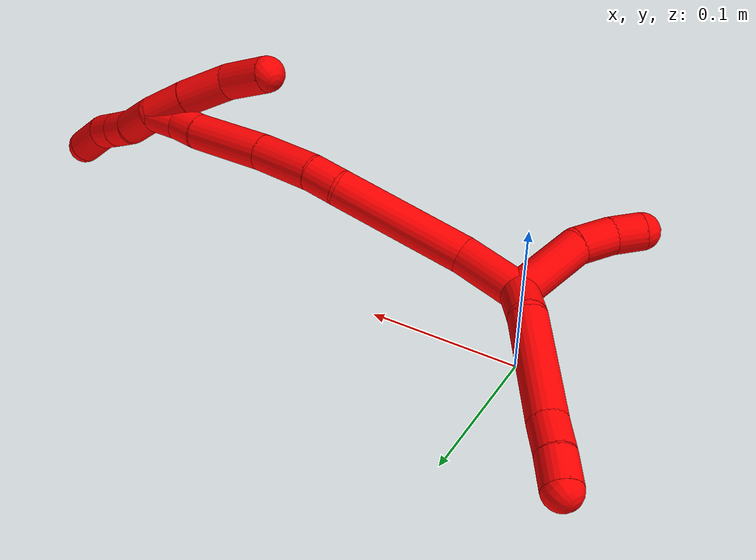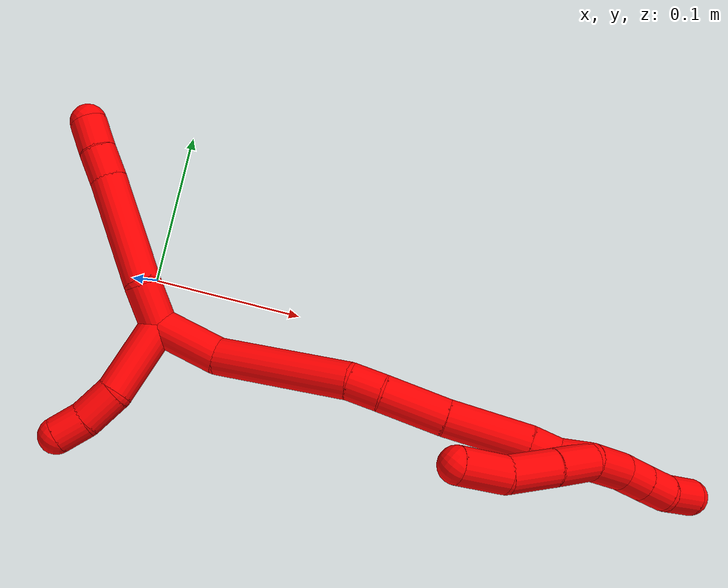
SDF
<sdf version="1.7">
 <world name="default">
  <model name="2">
   <static>0</static>
   <link name="2">
    <collision name="collision-cylinder-e_1_2_8">
     <pose>-0.003464 0.008222 -0.012033 -2.54219 -0.233328 0.725009</pose>
     <geometry><cylinder><radius>0.0125</radius><length>0.02996</length></cylinder></geometry>
     <surface>
      <friction><ode><mu>1.16</mu><mu2>1.16</mu2><slip1>0</slip1><slip2>0</slip2></ode></friction>
      <contact><ode><kp>1e+06</kp><kd>1</kd><max_vel>0</max_vel><min_depth>0.001</min_depth></ode></contact>
     </surface>
    </collision>
    <visual name="visual-cylinder-e_1_2_8">
     <pose>-0.003464 0.008222 -0.012033 -2.54219 -0.233328 0.725009</pose>
     <geometry><cylinder><radius>0.0125</radius><length>0.02996</length></cylinder></geometry>
     <material><ambient>1 0 0 1</ambient></material>
    </visual>
    <collision name="collision-cylinder-e_2_8_9">
     <pose>-0.003653 0.035432 -0.056765 -2.61549 0.086389 -0.318287</pose>
     <geometry><cylinder><radius>0.0125</radius><length>0.075907</length></cylinder></geometry>
     <surface>
      <friction><ode><mu>1.16</mu><mu2>1.16</mu2><slip1>0</slip1><slip2>0</slip2></ode></friction>
      <contact><ode><kp>1e+06</kp><kd>1</kd><max_vel>0</max_vel><min_depth>0.001</min_depth></ode></contact>
     </surface>
    </collision>
    <visual name="visual-cylinder-e_2_8_9">
     <pose>-0.003653 0.035432 -0.056765 -2.61549 0.086389 -0.318287</pose>
     <geometry><cylinder><radius>0.0125</radius><length>0.075907</length></cylinder></geometry>
     <material><ambient>1 0 0 1</ambient></material>
    </visual>
    <collision name="collision-cylinder-e_3_9_10">
     <pose>-6.1e-05 0.059768 -0.099066 -2.63338 0.028816 -0.110845</pose>
     <geometry><cylinder><radius>0.0125</radius><length>0.021992</length></cylinder></geometry>
     <surface>
      <friction><ode><mu>1.16</mu><mu2>1.16</mu2><slip1>0</slip1><slip2>0</slip2></ode></friction>
      <contact><ode><kp>1e+06</kp><kd>1</kd><max_vel>0</max_vel><min_depth>0.001</min_depth></ode></contact>
     </surface>
    </collision>
    <visual name="visual-cylinder-e_3_9_10">
     <pose>-6.1e-05 0.059768 -0.099066 -2.63338 0.028816 -0.110845</pose>
     <geometry><cylinder><radius>0.0125</radius><length>0.021992</length></cylinder></geometry>
     <material><ambient>1 0 0 1</ambient></material>
    </visual>
    <collision name="collision-cylinder-e_4_10_6">
     <pose>0.001518 0.07056 -0.118226 -2.62384 0.114247 -0.425351</pose>
     <geometry><cylinder><radius>0.0125</radius><length>0.022141</length></cylinder></geometry>
     <surface>
      <friction><ode><mu>1.16</mu><mu2>1.16</mu2><slip1>0</slip1><slip2>0</slip2></ode></friction>
      <contact><ode><kp>1e+06</kp><kd>1</kd><max_vel>0</max_vel><min_depth>0.001</min_depth></ode></contact>
     </surface>
    </collision>
    <visual name="visual-cylinder-e_4_10_6">
     <pose>0.001518 0.07056 -0.118226 -2.62384 0.114247 -0.425351</pose>
     <geometry><cylinder><radius>0.0125</radius><length>0.022141</length></cylinder></geometry>
     <material><ambient>1 0 0 1</ambient></material>
    </visual>
    <collision name="collision-cylinder-e_1_2_11">
     <pose>-0.008066 -0.024706 0.003994 1.41053 -0.311789 -0.266027</pose>
     <geometry><cylinder><radius>0.0125</radius><length>0.052589</length></cylinder></geometry>
     <surface>
      <friction><ode><mu>1.16</mu><mu2>1.16</mu2><slip1>0</slip1><slip2>0</slip2></ode></friction>
      <contact><ode><kp>1e+06</kp><kd>1</kd><max_vel>0</max_vel><min_depth>0.001</min_depth></ode></contact>
     </surface>
    </collision>
    <visual name="visual-cylinder-e_1_2_11">
     <pose>-0.008066 -0.024706 0.003994 1.41053 -0.311789 -0.266027</pose>
     <geometry><cylinder><radius>0.0125</radius><length>0.052589</length></cylinder></geometry>
     <material><ambient>1 0 0 1</ambient></material>
    </visual>
    <collision name="collision-cylinder-e_2_11_12">
     <pose>-0.018524 -0.062089 0.006071 1.72086 -0.184392 -0.214156</pose>
     <geometry><cylinder><radius>0.0125</radius><length>0.026084</length></cylinder></geometry>
     <surface>
      <friction><ode><mu>1.16</mu><mu2>1.16</mu2><slip1>0</slip1><slip2>0</slip2></ode></friction>
      <contact><ode><kp>1e+06</kp><kd>1</kd><max_vel>0</max_vel><min_depth>0.001</min_depth></ode></contact>
     </surface>
    </collision>
    <visual name="visual-cylinder-e_2_11_12">
     <pose>-0.018524 -0.062089 0.006071 1.72086 -0.184392 -0.214156</pose>
     <geometry><cylinder><radius>0.0125</radius><length>0.026084</length></cylinder></geometry>
     <material><ambient>1 0 0 1</ambient></material>
    </visual>
    <collision name="collision-cylinder-e_3_12_5">
     <pose>-0.023361 -0.084442 0.0004 1.94085 -0.231503 -0.336426</pose>
     <geometry><cylinder><radius>0.0125</radius><length>0.021327</length></cylinder></geometry>
     <surface>
      <friction><ode><mu>1.16</mu><mu2>1.16</mu2><slip1>0</slip1><slip2>0</slip2></ode></friction>
      <contact><ode><kp>1e+06</kp><kd>1</kd><max_vel>0</max_vel><min_depth>0.001</min_depth></ode></contact>
     </surface>
    </collision>
    <visual name="visual-cylinder-e_3_12_5">
     <pose>-0.023361 -0.084442 0.0004 1.94085 -0.231503 -0.336426</pose>
     <geometry><cylinder><radius>0.0125</radius><length>0.021327</length></cylinder></geometry>
     <material><ambient>1 0 0 1</ambient></material>
    </visual>
    <collision name="collision-cylinder-e_1_2_13">
     <pose>0.002778 0.004307 0.021874 -0.194431 0.123977 -0.012106</pose>
     <geometry><cylinder><radius>0.0125</radius><length>0.044933</length></cylinder></geometry>
     <surface>
      <friction><ode><mu>1.16</mu><mu2>1.16</mu2><slip1>0</slip1><slip2>0</slip2></ode></friction>
      <contact><ode><kp>1e+06</kp><kd>1</kd><max_vel>0</max_vel><min_depth>0.001</min_depth></ode></contact>
     </surface>
    </collision>
    <visual name="visual-cylinder-e_1_2_13">
     <pose>0.002778 0.004307 0.021874 -0.194431 0.123977 -0.012106</pose>
     <geometry><cylinder><radius>0.0125</radius><length>0.044933</length></cylinder></geometry>
     <material><ambient>1 0 0 1</ambient></material>
    </visual>
    <collision name="collision-cylinder-e_2_13_14">
     <pose>0.005301 0.030107 0.084369 -0.486651 -0.005558 0.00138</pose>
     <geometry><cylinder><radius>0.0125</radius><length>0.091914</length></cylinder></geometry>
     <surface>
      <friction><ode><mu>1.16</mu><mu2>1.16</mu2><slip1>0</slip1><slip2>0</slip2></ode></friction>
      <contact><ode><kp>1e+06</kp><kd>1</kd><max_vel>0</max_vel><min_depth>0.001</min_depth></ode></contact>
     </surface>
    </collision>
    <visual name="visual-cylinder-e_2_13_14">
     <pose>0.005301 0.030107 0.084369 -0.486651 -0.005558 0.00138</pose>
     <geometry><cylinder><radius>0.0125</radius><length>0.091914</length></cylinder></geometry>
     <material><ambient>1 0 0 1</ambient></material>
    </visual>
    <collision name="collision-cylinder-e_3_14_15">
     <pose>0.006473 0.054978 0.135555 -0.309492 0.127968 -0.019989</pose>
     <geometry><cylinder><radius>0.0125</radius><length>0.022366</length></cylinder></geometry>
     <surface>
      <friction><ode><mu>1.16</mu><mu2>1.16</mu2><slip1>0</slip1><slip2>0</slip2></ode></friction>
      <contact><ode><kp>1e+06</kp><kd>1</kd><max_vel>0</max_vel><min_depth>0.001</min_depth></ode></contact>
     </surface>
    </collision>
    <visual name="visual-cylinder-e_3_14_15">
     <pose>0.006473 0.054978 0.135555 -0.309492 0.127968 -0.019989</pose>
     <geometry><cylinder><radius>0.0125</radius><length>0.022366</length></cylinder></geometry>
     <material><ambient>1 0 0 1</ambient></material>
    </visual>
    <collision name="collision-cylinder-e_4_15_16">
     <pose>0.013735 0.064149 0.166214 -0.280694 0.272092 -0.038674</pose>
     <geometry><cylinder><radius>0.0125</radius><length>0.043423</length></cylinder></geometry>
     <surface>
      <friction><ode><mu>1.16</mu><mu2>1.16</mu2><slip1>0</slip1><slip2>0</slip2></ode></friction>
      <contact><ode><kp>1e+06</kp><kd>1</kd><max_vel>0</max_vel><min_depth>0.001</min_depth></ode></contact>
     </surface>
    </collision>
    <visual name="visual-cylinder-e_4_15_16">
     <pose>0.013735 0.064149 0.166214 -0.280694 0.272092 -0.038674</pose>
     <geometry><cylinder><radius>0.0125</radius><length>0.043423</length></cylinder></geometry>
     <material><ambient>1 0 0 1</ambient></material>
    </visual>
    <collision name="collision-cylinder-e_5_16_17">
     <pose>0.028047 0.078935 0.211486 -0.343038 0.307044 -0.053595</pose>
     <geometry><cylinder><radius>0.0125</radius><length>0.056095</length></cylinder></geometry>
     <surface>
      <friction><ode><mu>1.16</mu><mu2>1.16</mu2><slip1>0</slip1><slip2>0</slip2></ode></friction>
      <contact><ode><kp>1e+06</kp><kd>1</kd><max_vel>0</max_vel><min_depth>0.001</min_depth></ode></contact>
     </surface>
    </collision>
    <visual name="visual-cylinder-e_5_16_17">
     <pose>0.028047 0.078935 0.211486 -0.343038 0.307044 -0.053595</pose>
     <geometry><cylinder><radius>0.0125</radius><length>0.056095</length></cylinder></geometry>
     <material><ambient>1 0 0 1</ambient></material>
    </visual>
    <collision name="collision-cylinder-e_6_17_18">
     <pose>0.039087 0.090052 0.246121 -0.220925 0.258537 -0.028834</pose>
     <geometry><cylinder><radius>0.0125</radius><length>0.02005</length></cylinder></geometry>
     <surface>
      <friction><ode><mu>1.16</mu><mu2>1.16</mu2><slip1>0</slip1><slip2>0</slip2></ode></friction>
      <contact><ode><kp>1e+06</kp><kd>1</kd><max_vel>0</max_vel><min_depth>0.001</min_depth></ode></contact>
     </surface>
    </collision>
    <visual name="visual-cylinder-e_6_17_18">
     <pose>0.039087 0.090052 0.246121 -0.220925 0.258537 -0.028834</pose>
     <geometry><cylinder><radius>0.0125</radius><length>0.02005</length></cylinder></geometry>
     <material><ambient>1 0 0 1</ambient></material>
    </visual>
    <collision name="collision-cylinder-e_7_18_1">
     <pose>0.043357 0.097417 0.264641 -0.524323 0.161618 -0.043456</pose>
     <geometry><cylinder><radius>0.0125</radius><length>0.021218</length></cylinder></geometry>
     <surface>
      <friction><ode><mu>1.16</mu><mu2>1.16</mu2><slip1>0</slip1><slip2>0</slip2></ode></friction>
      <contact><ode><kp>1e+06</kp><kd>1</kd><max_vel>0</max_vel><min_depth>0.001</min_depth></ode></contact>
     </surface>
    </collision>
    <visual name="visual-cylinder-e_7_18_1">
     <pose>0.043357 0.097417 0.264641 -0.524323 0.161618 -0.043456</pose>
     <geometry><cylinder><radius>0.0125</radius><length>0.021218</length></cylinder></geometry>
     <material><ambient>1 0 0 1</ambient></material>
    </visual>
    <collision name="collision-cylinder-e_1_1_19">
     <pose>0.034406 0.095288 0.266537 2.34227 -0.803334 -1.57638</pose>
     <geometry><cylinder><radius>0.0125</radius><length>0.029619</length></cylinder></geometry>
     <surface>
      <friction><ode><mu>1.16</mu><mu2>1.16</mu2><slip1>0</slip1><slip2>0</slip2></ode></friction>
      <contact><ode><kp>1e+06</kp><kd>1</kd><max_vel>0</max_vel><min_depth>0.001</min_depth></ode></contact>
     </surface>
    </collision>
    <visual name="visual-cylinder-e_1_1_19">
     <pose>0.034406 0.095288 0.266537 2.34227 -0.803334 -1.57638</pose>
     <geometry><cylinder><radius>0.0125</radius><length>0.029619</length></cylinder></geometry>
     <material><ambient>1 0 0 1</ambient></material>
    </visual>
    <collision name="collision-cylinder-e_2_19_20">
     <pose>0.011781 0.078471 0.249994 2.35238 -0.732447 -1.48853</pose>
     <geometry><cylinder><radius>0.0125</radius><length>0.035795</length></cylinder></geometry>
     <surface>
      <friction><ode><mu>1.16</mu><mu2>1.16</mu2><slip1>0</slip1><slip2>0</slip2></ode></friction>
      <contact><ode><kp>1e+06</kp><kd>1</kd><max_vel>0</max_vel><min_depth>0.001</min_depth></ode></contact>
     </surface>
    </collision>
    <visual name="visual-cylinder-e_2_19_20">
     <pose>0.011781 0.078471 0.249994 2.35238 -0.732447 -1.48853</pose>
     <geometry><cylinder><radius>0.0125</radius><length>0.035795</length></cylinder></geometry>
     <material><ambient>1 0 0 1</ambient></material>
    </visual>
    <collision name="collision-cylinder-e_3_20_4">
     <pose>-0.011106 0.063832 0.228256 2.74391 -0.683341 -2.11054</pose>
     <geometry><cylinder><radius>0.0125</radius><length>0.034586</length></cylinder></geometry>
     <surface>
      <friction><ode><mu>1.16</mu><mu2>1.16</mu2><slip1>0</slip1><slip2>0</slip2></ode></friction>
      <contact><ode><kp>1e+06</kp><kd>1</kd><max_vel>0</max_vel><min_depth>0.001</min_depth></ode></contact>
     </surface>
    </collision>
    <visual name="visual-cylinder-e_3_20_4">
     <pose>-0.011106 0.063832 0.228256 2.74391 -0.683341 -2.11054</pose>
     <geometry><cylinder><radius>0.0125</radius><length>0.034586</length></cylinder></geometry>
     <material><ambient>1 0 0 1</ambient></material>
    </visual>
    <collision name="collision-cylinder-e_1_1_21">
     <pose>0.057346 0.104742 0.282457 -0.233641 0.938628 -0.118882</pose>
     <geometry><cylinder><radius>0.0125</radius><length>0.030448</length></cylinder></geometry>
     <surface>
      <friction><ode><mu>1.16</mu><mu2>1.16</mu2><slip1>0</slip1><slip2>0</slip2></ode></friction>
      <contact><ode><kp>1e+06</kp><kd>1</kd><max_vel>0</max_vel><min_depth>0.001</min_depth></ode></contact>
     </surface>
    </collision>
    <visual name="visual-cylinder-e_1_1_21">
     <pose>0.057346 0.104742 0.282457 -0.233641 0.938628 -0.118882</pose>
     <geometry><cylinder><radius>0.0125</radius><length>0.030448</length></cylinder></geometry>
     <material><ambient>1 0 0 1</ambient></material>
    </visual>
    <collision name="collision-cylinder-e_2_21_22">
     <pose>0.076585 0.10772 0.298877 -0.116168 0.73338 -0.044658</pose>
     <geometry><cylinder><radius>0.0125</radius><length>0.020787</length></cylinder></geometry>
     <surface>
      <friction><ode><mu>1.16</mu><mu2>1.16</mu2><slip1>0</slip1><slip2>0</slip2></ode></friction>
      <contact><ode><kp>1e+06</kp><kd>1</kd><max_vel>0</max_vel><min_depth>0.001</min_depth></ode></contact>
     </surface>
    </collision>
    <visual name="visual-cylinder-e_2_21_22">
     <pose>0.076585 0.10772 0.298877 -0.116168 0.73338 -0.044658</pose>
     <geometry><cylinder><radius>0.0125</radius><length>0.020787</length></cylinder></geometry>
     <material><ambient>1 0 0 1</ambient></material>
    </visual>
    <collision name="collision-cylinder-e_3_22_23">
     <pose>0.090237 0.109617 0.314206 -0.130165 0.714019 -0.04861</pose>
     <geometry><cylinder><radius>0.0125</radius><length>0.020443</length></cylinder></geometry>
     <surface>
      <friction><ode><mu>1.16</mu><mu2>1.16</mu2><slip1>0</slip1><slip2>0</slip2></ode></friction>
      <contact><ode><kp>1e+06</kp><kd>1</kd><max_vel>0</max_vel><min_depth>0.001</min_depth></ode></contact>
     </surface>
    </collision>
    <visual name="visual-cylinder-e_3_22_23">
     <pose>0.090237 0.109617 0.314206 -0.130165 0.714019 -0.04861</pose>
     <geometry><cylinder><radius>0.0125</radius><length>0.020443</length></cylinder></geometry>
     <material><ambient>1 0 0 1</ambient></material>
    </visual>
    <collision name="collision-cylinder-e_4_23_3">
     <pose>0.108818 0.113401 0.329042 -0.369666 0.996243 -0.202673</pose>
     <geometry><cylinder><radius>0.0125</radius><length>0.028322</length></cylinder></geometry>
     <surface>
      <friction><ode><mu>1.16</mu><mu2>1.16</mu2><slip1>0</slip1><slip2>0</slip2></ode></friction>
      <contact><ode><kp>1e+06</kp><kd>1</kd><max_vel>0</max_vel><min_depth>0.001</min_depth></ode></contact>
     </surface>
    </collision>
    <visual name="visual-cylinder-e_4_23_3">
     <pose>0.108818 0.113401 0.329042 -0.369666 0.996243 -0.202673</pose>
     <geometry><cylinder><radius>0.0125</radius><length>0.028322</length></cylinder></geometry>
     <material><ambient>1 0 0 1</ambient></material>
    </visual>
    <collision name="collision-sphere-3">
     <pose>0.120705 0.116181 0.336218 0 -0 0</pose>
     <geometry><sphere><radius>0.0125</radius></sphere></geometry>
     <surface>
      <friction><ode><mu>1.16</mu><mu2>1.16</mu2><slip1>0</slip1><slip2>0</slip2></ode></friction>
      <contact><ode><kp>1e+06</kp><kd>1</kd><max_vel>0</max_vel><min_depth>0.001</min_depth></ode></contact>
     </surface>
    </collision>
    <visual name="visual-sphere-3">
     <pose>0.120705 0.116181 0.336218 0 -0 0</pose>
     <geometry><sphere><radius>0.0125</radius></sphere></geometry>
     <material><ambient>1 0 0 1</ambient></material>
    </visual>
    <collision name="collision-sphere-23">
     <pose>0.09693 0.11062 0.321866 0 -0 0</pose>
     <geometry><sphere><radius>0.0125</radius></sphere></geometry>
     <surface>
      <friction><ode><mu>1.16</mu><mu2>1.16</mu2><slip1>0</slip1><slip2>0</slip2></ode></friction>
      <contact><ode><kp>1e+06</kp><kd>1</kd><max_vel>0</max_vel><min_depth>0.001</min_depth></ode></contact>
     </surface>
    </collision>
    <visual name="visual-sphere-23">
     <pose>0.09693 0.11062 0.321866 0 -0 0</pose>
     <geometry><sphere><radius>0.0125</radius></sphere></geometry>
     <material><ambient>1 0 0 1</ambient></material>
    </visual>
    <collision name="collision-sphere-22">
     <pose>0.083543 0.108615 0.306547 0 -0 0</pose>
     <geometry><sphere><radius>0.0125</radius></sphere></geometry>
     <surface>
      <friction><ode><mu>1.16</mu><mu2>1.16</mu2><slip1>0</slip1><slip2>0</slip2></ode></friction>
      <contact><ode><kp>1e+06</kp><kd>1</kd><max_vel>0</max_vel><min_depth>0.001</min_depth></ode></contact>
     </surface>
    </collision>
    <visual name="visual-sphere-22">
     <pose>0.083543 0.108615 0.306547 0 -0 0</pose>
     <geometry><sphere><radius>0.0125</radius></sphere></geometry>
     <material><ambient>1 0 0 1</ambient></material>
    </visual>
    <collision name="collision-sphere-21">
     <pose>0.069628 0.106825 0.291208 0 -0 0</pose>
     <geometry><sphere><radius>0.0125</radius></sphere></geometry>
     <surface>
      <friction><ode><mu>1.16</mu><mu2>1.16</mu2><slip1>0</slip1><slip2>0</slip2></ode></friction>
      <contact><ode><kp>1e+06</kp><kd>1</kd><max_vel>0</max_vel><min_depth>0.001</min_depth></ode></contact>
     </surface>
    </collision>
    <visual name="visual-sphere-21">
     <pose>0.069628 0.106825 0.291208 0 -0 0</pose>
     <geometry><sphere><radius>0.0125</radius></sphere></geometry>
     <material><ambient>1 0 0 1</ambient></material>
    </visual>
    <collision name="collision-sphere-4">
     <pose>-0.022025 0.058638 0.215893 0 -0 0</pose>
     <geometry><sphere><radius>0.0125</radius></sphere></geometry>
     <surface>
      <friction><ode><mu>1.16</mu><mu2>1.16</mu2><slip1>0</slip1><slip2>0</slip2></ode></friction>
      <contact><ode><kp>1e+06</kp><kd>1</kd><max_vel>0</max_vel><min_depth>0.001</min_depth></ode></contact>
     </surface>
    </collision>
    <visual name="visual-sphere-4">
     <pose>-0.022025 0.058638 0.215893 0 -0 0</pose>
     <geometry><sphere><radius>0.0125</radius></sphere></geometry>
     <material><ambient>1 0 0 1</ambient></material>
    </visual>
    <collision name="collision-sphere-20">
     <pose>-0.000187 0.069026 0.24062 0 -0 0</pose>
     <geometry><sphere><radius>0.0125</radius></sphere></geometry>
     <surface>
      <friction><ode><mu>1.16</mu><mu2>1.16</mu2><slip1>0</slip1><slip2>0</slip2></ode></friction>
      <contact><ode><kp>1e+06</kp><kd>1</kd><max_vel>0</max_vel><min_depth>0.001</min_depth></ode></contact>
     </surface>
    </collision>
    <visual name="visual-sphere-20">
     <pose>-0.000187 0.069026 0.24062 0 -0 0</pose>
     <geometry><sphere><radius>0.0125</radius></sphere></geometry>
     <material><ambient>1 0 0 1</ambient></material>
    </visual>
    <collision name="collision-sphere-11">
     <pose>-0.016132 -0.049412 0.007988 0 -0 0</pose>
     <geometry><sphere><radius>0.0125</radius></sphere></geometry>
     <surface>
      <friction><ode><mu>1.16</mu><mu2>1.16</mu2><slip1>0</slip1><slip2>0</slip2></ode></friction>
      <contact><ode><kp>1e+06</kp><kd>1</kd><max_vel>0</max_vel><min_depth>0.001</min_depth></ode></contact>
     </surface>
    </collision>
    <visual name="visual-sphere-11">
     <pose>-0.016132 -0.049412 0.007988 0 -0 0</pose>
     <geometry><sphere><radius>0.0125</radius></sphere></geometry>
     <material><ambient>1 0 0 1</ambient></material>
    </visual>
    <collision name="collision-sphere-6">
     <pose>0.00278 0.076004 -0.127782 0 -0 0</pose>
     <geometry><sphere><radius>0.0125</radius></sphere></geometry>
     <surface>
      <friction><ode><mu>1.16</mu><mu2>1.16</mu2><slip1>0</slip1><slip2>0</slip2></ode></friction>
      <contact><ode><kp>1e+06</kp><kd>1</kd><max_vel>0</max_vel><min_depth>0.001</min_depth></ode></contact>
     </surface>
    </collision>
    <visual name="visual-sphere-6">
     <pose>0.00278 0.076004 -0.127782 0 -0 0</pose>
     <geometry><sphere><radius>0.0125</radius></sphere></geometry>
     <material><ambient>1 0 0 1</ambient></material>
    </visual>
    <collision name="collision-sphere-10">
     <pose>0.000256 0.065117 -0.108669 0 -0 0</pose>
     <geometry><sphere><radius>0.0125</radius></sphere></geometry>
     <surface>
      <friction><ode><mu>1.16</mu><mu2>1.16</mu2><slip1>0</slip1><slip2>0</slip2></ode></friction>
      <contact><ode><kp>1e+06</kp><kd>1</kd><max_vel>0</max_vel><min_depth>0.001</min_depth></ode></contact>
     </surface>
    </collision>
    <visual name="visual-sphere-10">
     <pose>0.000256 0.065117 -0.108669 0 -0 0</pose>
     <geometry><sphere><radius>0.0125</radius></sphere></geometry>
     <material><ambient>1 0 0 1</ambient></material>
    </visual>
    <collision name="collision-sphere-9">
     <pose>-0.000378 0.05442 -0.089464 0 -0 0</pose>
     <geometry><sphere><radius>0.0125</radius></sphere></geometry>
     <surface>
      <friction><ode><mu>1.16</mu><mu2>1.16</mu2><slip1>0</slip1><slip2>0</slip2></ode></friction>
      <contact><ode><kp>1e+06</kp><kd>1</kd><max_vel>0</max_vel><min_depth>0.001</min_depth></ode></contact>
     </surface>
    </collision>
    <visual name="visual-sphere-9">
     <pose>-0.000378 0.05442 -0.089464 0 -0 0</pose>
     <geometry><sphere><radius>0.0125</radius></sphere></geometry>
     <material><ambient>1 0 0 1</ambient></material>
    </visual>
    <collision name="collision-sphere-2">
     <geometry><sphere><radius>0.0125</radius></sphere></geometry>
     <surface>
      <friction><ode><mu>1.16</mu><mu2>1.16</mu2><slip1>0</slip1><slip2>0</slip2></ode></friction>
      <contact><ode><kp>1e+06</kp><kd>1</kd><max_vel>0</max_vel><min_depth>0.001</min_depth></ode></contact>
     </surface>
    </collision>
    <visual name="visual-sphere-2">
     <geometry><sphere><radius>0.0125</radius></sphere></geometry>
     <material><ambient>1 0 0 1</ambient></material>
    </visual>
    <collision name="collision-sphere-19">
     <pose>0.023748 0.087917 0.259368 0 -0 0</pose>
     <geometry><sphere><radius>0.0125</radius></sphere></geometry>
     <surface>
      <friction><ode><mu>1.16</mu><mu2>1.16</mu2><slip1>0</slip1><slip2>0</slip2></ode></friction>
      <contact><ode><kp>1e+06</kp><kd>1</kd><max_vel>0</max_vel><min_depth>0.001</min_depth></ode></contact>
     </surface>
    </collision>
    <visual name="visual-sphere-19">
     <pose>0.023748 0.087917 0.259368 0 -0 0</pose>
     <geometry><sphere><radius>0.0125</radius></sphere></geometry>
     <material><ambient>1 0 0 1</ambient></material>
    </visual>
    <collision name="collision-sphere-8">
     <pose>-0.006927 0.016444 -0.024067 0 -0 0</pose>
     <geometry><sphere><radius>0.0125</radius></sphere></geometry>
     <surface>
      <friction><ode><mu>1.16</mu><mu2>1.16</mu2><slip1>0</slip1><slip2>0</slip2></ode></friction>
      <contact><ode><kp>1e+06</kp><kd>1</kd><max_vel>0</max_vel><min_depth>0.001</min_depth></ode></contact>
     </surface>
    </collision>
    <visual name="visual-sphere-8">
     <pose>-0.006927 0.016444 -0.024067 0 -0 0</pose>
     <geometry><sphere><radius>0.0125</radius></sphere></geometry>
     <material><ambient>1 0 0 1</ambient></material>
    </visual>
    <collision name="collision-sphere-12">
     <pose>-0.020915 -0.074766 0.004154 0 -0 0</pose>
     <geometry><sphere><radius>0.0125</radius></sphere></geometry>
     <surface>
      <friction><ode><mu>1.16</mu><mu2>1.16</mu2><slip1>0</slip1><slip2>0</slip2></ode></friction>
      <contact><ode><kp>1e+06</kp><kd>1</kd><max_vel>0</max_vel><min_depth>0.001</min_depth></ode></contact>
     </surface>
    </collision>
    <visual name="visual-sphere-12">
     <pose>-0.020915 -0.074766 0.004154 0 -0 0</pose>
     <geometry><sphere><radius>0.0125</radius></sphere></geometry>
     <material><ambient>1 0 0 1</ambient></material>
    </visual>
    <collision name="collision-sphere-5">
     <pose>-0.025808 -0.094119 -0.003354 0 -0 0</pose>
     <geometry><sphere><radius>0.0125</radius></sphere></geometry>
     <surface>
      <friction><ode><mu>1.16</mu><mu2>1.16</mu2><slip1>0</slip1><slip2>0</slip2></ode></friction>
      <contact><ode><kp>1e+06</kp><kd>1</kd><max_vel>0</max_vel><min_depth>0.001</min_depth></ode></contact>
     </surface>
    </collision>
    <visual name="visual-sphere-5">
     <pose>-0.025808 -0.094119 -0.003354 0 -0 0</pose>
     <geometry><sphere><radius>0.0125</radius></sphere></geometry>
     <material><ambient>1 0 0 1</ambient></material>
    </visual>
    <collision name="collision-sphere-13">
     <pose>0.005556 0.008615 0.043748 0 -0 0</pose>
     <geometry><sphere><radius>0.0125</radius></sphere></geometry>
     <surface>
      <friction><ode><mu>1.16</mu><mu2>1.16</mu2><slip1>0</slip1><slip2>0</slip2></ode></friction>
      <contact><ode><kp>1e+06</kp><kd>1</kd><max_vel>0</max_vel><min_depth>0.001</min_depth></ode></contact>
     </surface>
    </collision>
    <visual name="visual-sphere-13">
     <pose>0.005556 0.008615 0.043748 0 -0 0</pose>
     <geometry><sphere><radius>0.0125</radius></sphere></geometry>
     <material><ambient>1 0 0 1</ambient></material>
    </visual>
    <collision name="collision-sphere-14">
     <pose>0.005046 0.0516 0.12499 0 -0 0</pose>
     <geometry><sphere><radius>0.0125</radius></sphere></geometry>
     <surface>
      <friction><ode><mu>1.16</mu><mu2>1.16</mu2><slip1>0</slip1><slip2>0</slip2></ode></friction>
      <contact><ode><kp>1e+06</kp><kd>1</kd><max_vel>0</max_vel><min_depth>0.001</min_depth></ode></contact>
     </surface>
    </collision>
    <visual name="visual-sphere-14">
     <pose>0.005046 0.0516 0.12499 0 -0 0</pose>
     <geometry><sphere><radius>0.0125</radius></sphere></geometry>
     <material><ambient>1 0 0 1</ambient></material>
    </visual>
    <collision name="collision-sphere-15">
     <pose>0.0079 0.058356 0.14612 0 -0 0</pose>
     <geometry><sphere><radius>0.0125</radius></sphere></geometry>
     <surface>
      <friction><ode><mu>1.16</mu><mu2>1.16</mu2><slip1>0</slip1><slip2>0</slip2></ode></friction>
      <contact><ode><kp>1e+06</kp><kd>1</kd><max_vel>0</max_vel><min_depth>0.001</min_depth></ode></contact>
     </surface>
    </collision>
    <visual name="visual-sphere-15">
     <pose>0.0079 0.058356 0.14612 0 -0 0</pose>
     <geometry><sphere><radius>0.0125</radius></sphere></geometry>
     <material><ambient>1 0 0 1</ambient></material>
    </visual>
    <collision name="collision-sphere-16">
     <pose>0.01957 0.069943 0.186308 0 -0 0</pose>
     <geometry><sphere><radius>0.0125</radius></sphere></geometry>
     <surface>
      <friction><ode><mu>1.16</mu><mu2>1.16</mu2><slip1>0</slip1><slip2>0</slip2></ode></friction>
      <contact><ode><kp>1e+06</kp><kd>1</kd><max_vel>0</max_vel><min_depth>0.001</min_depth></ode></contact>
     </surface>
    </collision>
    <visual name="visual-sphere-16">
     <pose>0.01957 0.069943 0.186308 0 -0 0</pose>
     <geometry><sphere><radius>0.0125</radius></sphere></geometry>
     <material><ambient>1 0 0 1</ambient></material>
    </visual>
    <collision name="collision-sphere-17">
     <pose>0.036524 0.087928 0.236664 0 -0 0</pose>
     <geometry><sphere><radius>0.0125</radius></sphere></geometry>
     <surface>
      <friction><ode><mu>1.16</mu><mu2>1.16</mu2><slip1>0</slip1><slip2>0</slip2></ode></friction>
      <contact><ode><kp>1e+06</kp><kd>1</kd><max_vel>0</max_vel><min_depth>0.001</min_depth></ode></contact>
     </surface>
    </collision>
    <visual name="visual-sphere-17">
     <pose>0.036524 0.087928 0.236664 0 -0 0</pose>
     <geometry><sphere><radius>0.0125</radius></sphere></geometry>
     <material><ambient>1 0 0 1</ambient></material>
    </visual>
    <collision name="collision-sphere-18">
     <pose>0.04165 0.092175 0.255577 0 -0 0</pose>
     <geometry><sphere><radius>0.0125</radius></sphere></geometry>
     <surface>
      <friction><ode><mu>1.16</mu><mu2>1.16</mu2><slip1>0</slip1><slip2>0</slip2></ode></friction>
      <contact><ode><kp>1e+06</kp><kd>1</kd><max_vel>0</max_vel><min_depth>0.001</min_depth></ode></contact>
     </surface>
    </collision>
    <visual name="visual-sphere-18">
     <pose>0.04165 0.092175 0.255577 0 -0 0</pose>
     <geometry><sphere><radius>0.0125</radius></sphere></geometry>
     <material><ambient>1 0 0 1</ambient></material>
    </visual>
    <collision name="collision-sphere-1">
     <pose>0.045064 0.102659 0.273705 0 -0 0</pose>
     <geometry><sphere><radius>0.0125</radius></sphere></geometry>
     <surface>
      <friction><ode><mu>1.16</mu><mu2>1.16</mu2><slip1>0</slip1><slip2>0</slip2></ode></friction>
      <contact><ode><kp>1e+06</kp><kd>1</kd><max_vel>0</max_vel><min_depth>0.001</min_depth></ode></contact>
     </surface>
    </collision>
    <visual name="visual-sphere-1">
     <pose>0.045064 0.102659 0.273705 0 -0 0</pose>
     <geometry><sphere><radius>0.0125</radius></sphere></geometry>
     <material><ambient>1 0 0 1</ambient></material>
    </visual>
    <inertial>
     <pose>0.016263 0.046786 0.116806 0 -0 0</pose>
     <mass>0.75</mass>
     <inertia>
      <ixx>0.000146</ixx>
      <ixy>0</ixy>
      <ixz>0</ixz>
      <iyy>5.8e-05</iyy>
      <iyz>0</iyz>
      <izz>-3.8e-05</izz>
     </inertia>
    </inertial>
   </link>
   <pose>0.013414 -0.027952 0.034528 0.518177 1.30069 0.106902</pose>
  </model>
 </world>
</sdf>
